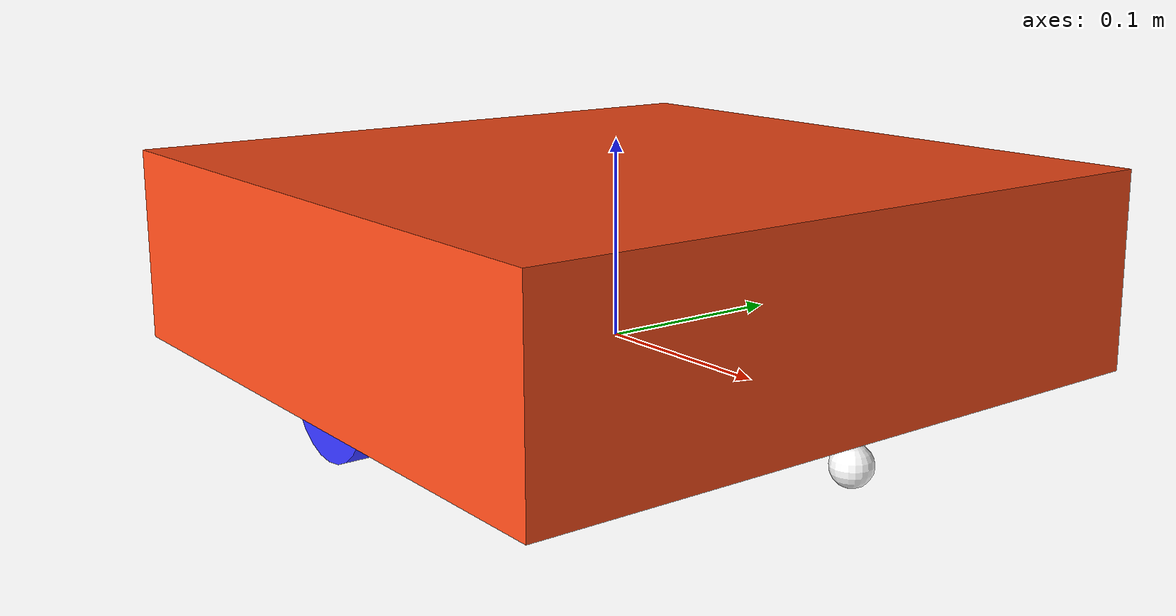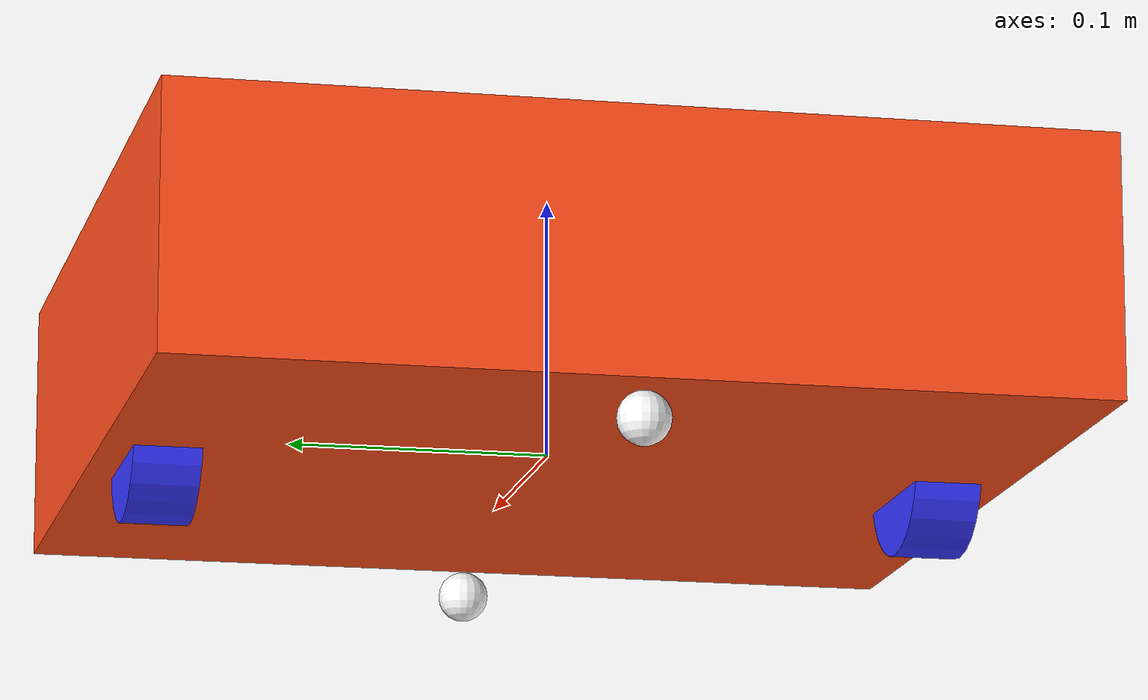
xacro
<?xml version="1.0"?>
<robot xmlns:xacro="http://www.ros.org/wiki/xacro" >

    <xacro:include filename="inertial_macros.xacro"/>

    <xacro:property name="chassis_length" value="0.35"/>
    <xacro:property name="chassis_width" value="0.35"/>
    <xacro:property name="chassis_height" value="0.10"/>
    <xacro:property name="chassis_mass" value="1.0"/>

    <xacro:property name="wheel_radius" value="0.0325"/>
    <xacro:property name="wheel_thickness" value="0.026"/>
    <xacro:property name="wheel_mass" value="0.05"/>

    <xacro:property name="wheel_offset_x" value="0.0"/>
    <xacro:property name="wheel_offset_y" value="0.15"/>
    <xacro:property name="wheel_offset_z" value="0.01"/>

    <xacro:property name="caster_wheel_radius" value="0.01"/>
    <xacro:property name="caster_wheel_mass" value="0.01"/>
    <xacro:property name="caster_wheel_offset_x" value="0.165"/>
    <xacro:property name="caster_wheel_offset_z" value="${wheel_offset_z - wheel_radius + caster_wheel_radius}"/>

    <material name="white">
        <color rgba="1 1 1 1" />
    </material>

    <material name="orange">
        <color rgba="1 0.3 0.1 1"/>
    </material>

    <material name="blue">
        <color rgba="0.2 0.2 1 1"/>
    </material>

    <material name="black">
        <color rgba="0 0 0 1"/>
    </material>

    <material name="red">
        <color rgba="1 0 0 1"/>
    </material>

    <!-- BASE LINK -->

    <link name="base_link">

    </link>

    <!-- BASE_FOOTPRINT LINK -->

    <joint name="base_footprint_joint" type="fixed">
        <parent link="base_footprint"/>
        <child link="base_link"/>
        <origin xyz="0 0 0" rpy="0 0 0"/>
    </joint>

    <link name="base_footprint">
    </link>

    <!-- CHASSIS LINK -->

    <joint name="chassis_joint" type="fixed">
        <parent link="base_link"/>
        <child link="chassis"/>
        <origin xyz="${-wheel_offset_x} 0 ${-wheel_offset_z}"/>
    </joint>

    <link name="chassis">
        <visual>
            <origin xyz="0 0 ${chassis_height/2}"/>
            <geometry>
                <box size="${chassis_length} ${chassis_width} ${chassis_height}"/>
            </geometry>
            <material name="orange"/>
        </visual>
        <collision>
            <origin xyz="0 0 ${chassis_height/2}"/>
            <geometry>
                <box size="${chassis_length} ${chassis_width} ${chassis_height}"/>
            </geometry>
        </collision>
        <xacro:inertial_box mass="0.5" x="${chassis_length}" y="${chassis_width}" z="${chassis_height}">
            <origin xyz="0 0 ${chassis_height/2}" rpy="0 0 0"/>
        </xacro:inertial_box>
    </link>

    <gazebo reference="chassis">
        <material>Gazebo/Orange</material>
    </gazebo>

     <!-- IMU Link -->
    <link name="imu_link">
    <visual>
        <origin xyz="0 0 0" rpy="0 0 0"/>
        <geometry>
            <box size="0.01 0.01 0.01"/>  <!-- tiny box for IMU -->
        </geometry>
        <material name="Grey">
            <color rgba="0.5 0.5 0.5 1.0"/>
        </material>
    </visual>
    </link>

    <!-- Static Joint Between Base and IMU -->
    <joint name="imu_joint" type="fixed">
        <parent link="base_link"/>
        <child link="imu_link"/>
        <!-- Replace xyz and rpy with actual physical mounting position -->
        <origin xyz="0.0 0.0 0.05" rpy="0 0 0"/>
    </joint>

     <gazebo reference="imu_link">
        <material>Gazebo/Orange</material>
    </gazebo>

    <!-- LEFT WHEEL LINK -->

    <joint name="left_wheel_joint" type="continuous">
        <parent link="base_link"/>
        <child link="left_wheel"/>
        <origin xyz="0 ${wheel_offset_y} 0" rpy="-${pi/2} 0 0" />
        <axis xyz="0 0 1"/>
    </joint>

    <link name="left_wheel">
        <visual>
            <geometry>
                <cylinder radius="${wheel_radius}" length="${wheel_thickness}"/>
            </geometry>
            <material name="blue"/>
        </visual>
        <collision>
            <geometry>
                <sphere radius="${wheel_radius}"/>
            </geometry>
        </collision>
        <xacro:inertial_cylinder mass="${wheel_mass}" length="${wheel_thickness}" radius="${wheel_radius}">
            <origin xyz="0 0 0" rpy="0 0 0"/>
        </xacro:inertial_cylinder>
    </link>

    <gazebo reference="left_wheel">
        <material>Gazebo/Blue</material>
    </gazebo>

    <!-- RIGHT WHEEL LINK -->

    <joint name="right_wheel_joint" type="continuous">
        <parent link="base_link"/>
        <child link="right_wheel"/>
        <origin xyz="0 ${-wheel_offset_y} 0" rpy="${pi/2} 0 0" />
        <axis xyz="0 0 -1"/>
    </joint>

    <link name="right_wheel">
        <visual>
            <geometry>
                <cylinder radius="${wheel_radius}" length="${wheel_thickness}"/>
            </geometry>
            <material name="blue"/>
        </visual>
        <collision>
            <geometry>
                <sphere radius="${wheel_radius}"/>
            </geometry>
        </collision>
        <xacro:inertial_cylinder mass="${wheel_mass}" length="${wheel_thickness}" radius="${wheel_radius}">
            <origin xyz="0 0 0" rpy="0 0 0"/>
        </xacro:inertial_cylinder>
    </link>

    <gazebo reference="right_wheel">
        <material>Gazebo/Blue</material>
    </gazebo>

    <!-- CASTER WHEEL LINK -->

    <joint name="caster_wheel_joint" type="fixed">
        <parent link="chassis"/>
        <child link="caster_wheel"/>
        <origin xyz="${caster_wheel_offset_x} 0 ${caster_wheel_offset_z}"/>
    </joint>

    <link name="caster_wheel">
        <visual>
            <geometry>
                <sphere radius="${caster_wheel_radius}"/>
            </geometry>
            <material name="white"/>
        </visual>
        <collision>
            <geometry>
                <sphere radius="${caster_wheel_radius}"/>
            </geometry>
        </collision>
        <xacro:inertial_sphere mass="${caster_wheel_mass}" radius="${caster_wheel_radius}">
            <origin xyz="0 0 0" rpy="0 0 0"/>
        </xacro:inertial_sphere>
    </link>

    <gazebo reference="caster_wheel">
        <material>Gazebo/White</material>
        <mu1 value="0.001"/>
        <mu2 value="0.001"/>
    </gazebo>

    <!-- CASTER WHEEL LINK 2 -->

    <joint name="caster_wheel_joint_2" type="fixed">
        <parent link="chassis"/>
        <child link="caster_wheel_2"/>
        <origin xyz="${-caster_wheel_offset_x} 0 ${caster_wheel_offset_z}"/>
    </joint>

    <link name="caster_wheel_2">
        <visual>
            <geometry>
                <sphere radius="${caster_wheel_radius}"/>
            </geometry>
            <material name="white"/>
        </visual>
        <collision>
            <geometry>
                <sphere radius="${caster_wheel_radius}"/>
            </geometry>
        </collision>
        <xacro:inertial_sphere mass="${caster_wheel_mass}" radius="${caster_wheel_radius}">
            <origin xyz="0 0 0" rpy="0 0 0"/>
        </xacro:inertial_sphere>
    </link>

    <gazebo reference="caster_wheel_2">
        <material>Gazebo/White</material>
        <mu1 value="0.001"/>
        <mu2 value="0.001"/>
    </gazebo>

</robot>
